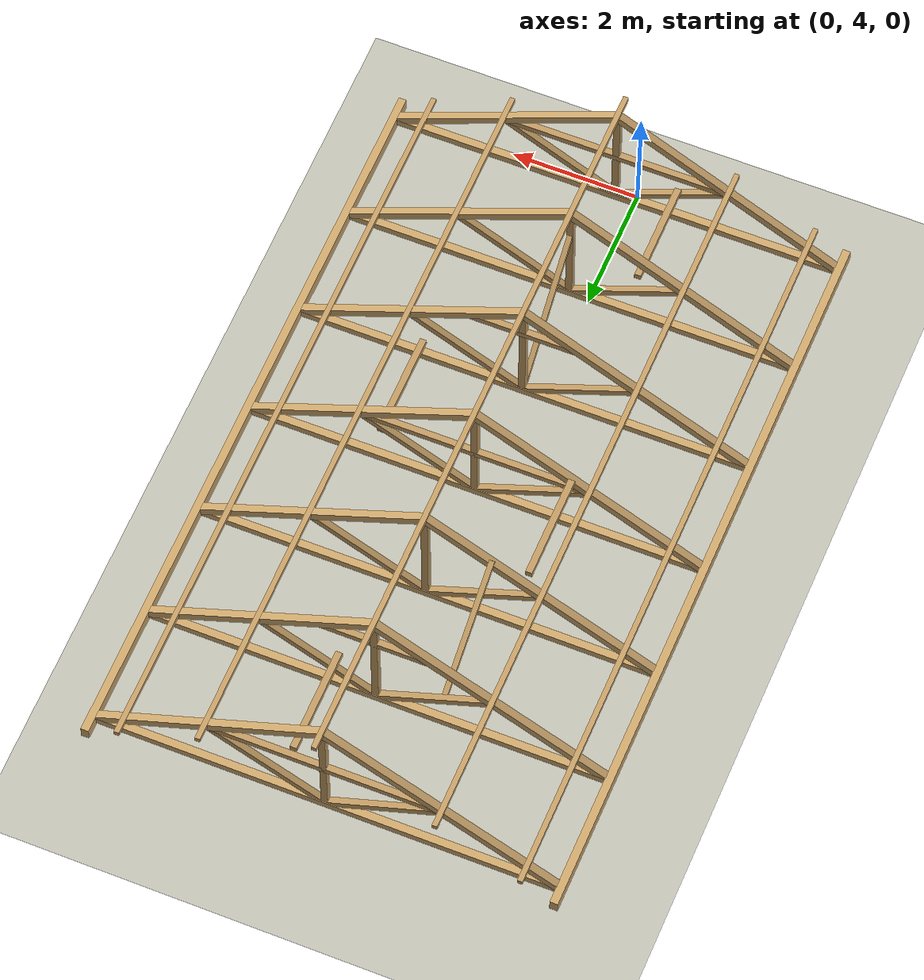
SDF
<?xml version="1.0" encoding="UTF-8"?>
<sdf version="1.9">
  <world name="truss2">
    <physics type="ode">
      <max_step_size>0.004</max_step_size>
      <real_time_factor>1.0</real_time_factor>
      <real_time_update_rate>250</real_time_update_rate>
    </physics>

    <plugin filename="gz-sim-physics-system" name="gz::sim::systems::Physics">
      <engine><filename>gz-physics-dartsim-plugin</filename></engine>
    </plugin>
    <plugin filename="gz-sim-navsat-system" name="gz::sim::systems::NavSat"/>
    <plugin filename="gz-sim-scene-broadcaster-system" name="gz::sim::systems::SceneBroadcaster"/>
    <plugin filename="gz-sim-user-commands-system" name="gz::sim::systems::UserCommands"/>
    <plugin filename="gz-sim-sensors-system" name="gz::sim::systems::Sensors">
      <render_engine>ogre2</render_engine>
    </plugin>
    <plugin filename="gz-sim-imu-system" name="gz::sim::systems::Imu"/>
    <plugin filename="gz-sim-magnetometer-system" name="gz::sim::systems::Magnetometer"/>
    <plugin filename="gz-sim-air-pressure-system" name="gz::sim::systems::AirPressure"/>

    <gravity>0 0 -9.8</gravity>
    <magnetic_field>6e-06 2.3e-05 -4.2e-05</magnetic_field>
    <atmosphere type="adiabatic"/>
    <scene>
      <grid>false</grid>
      <ambient>0.4 0.4 0.4 1</ambient>
      <background>0.45 0.65 0.95 1</background>
      <shadows>true</shadows>
    </scene>

    <!-- Ground -->
    <model name="ground_plane"><static>true</static>
      <link name="link">
        <collision name="collision">
          <geometry><plane><normal>0 0 1</normal><size>1 1</size></plane></geometry>
        </collision>
        <visual name="visual">
          <geometry><plane><normal>0 0 1</normal><size>500 500</size></plane></geometry>
          <material>
            <ambient>0.75 0.75 0.70 1</ambient>
            <diffuse>0.75 0.75 0.70 1</diffuse>
          </material>
        </visual>
      </link>
    </model>

    <!--  TRUSS 0  (y = 0)  +  collar tie at z = 2.5                -->
    <model name="t0_bchord"><static>true</static><pose>0 5.0 1.5 0 0 0</pose><link name="link">
        <collision name="c"><geometry><box><size>7.0 0.12 0.12</size></box></geometry></collision>
        <visual name="v"><geometry><box><size>7.0 0.12 0.12</size></box></geometry>
          <material><ambient>0.75 0.60 0.38 1</ambient><diffuse>0.80 0.65 0.42 1</diffuse></material></visual></link></model>
    <model name="t0_lraft"><static>true</static><pose>-1.75 5.0 2.5 0 -0.5191 0</pose><link name="link">
        <collision name="c"><geometry><box><size>4.031 0.12 0.12</size></box></geometry></collision>
        <visual name="v"><geometry><box><size>4.031 0.12 0.12</size></box></geometry>
          <material><ambient>0.75 0.60 0.38 1</ambient><diffuse>0.80 0.65 0.42 1</diffuse></material></visual></link></model>
    <model name="t0_rraft"><static>true</static><pose>1.75 5.0 2.5 0 0.5191 0</pose><link name="link">
        <collision name="c"><geometry><box><size>4.031 0.12 0.12</size></box></geometry></collision>
        <visual name="v"><geometry><box><size>4.031 0.12 0.12</size></box></geometry>
          <material><ambient>0.75 0.60 0.38 1</ambient><diffuse>0.80 0.65 0.42 1</diffuse></material></visual></link></model>
    <model name="t0_kpost"><static>true</static><pose>0 5.0 2.5 0 0 0</pose><link name="link">
        <collision name="c"><geometry><box><size>0.10 0.10 2.0</size></box></geometry></collision>
        <visual name="v"><geometry><box><size>0.10 0.10 2.0</size></box></geometry>
          <material><ambient>0.70 0.56 0.35 1</ambient><diffuse>0.75 0.60 0.38 1</diffuse></material></visual></link></model>
    <model name="t0_ldiag"><static>true</static><pose>-0.875 5.0 2.0 0 0.5191 0</pose><link name="link">
        <collision name="c"><geometry><box><size>2.016 0.10 0.10</size></box></geometry></collision>
        <visual name="v"><geometry><box><size>2.016 0.10 0.10</size></box></geometry>
          <material><ambient>0.70 0.56 0.35 1</ambient><diffuse>0.75 0.60 0.38 1</diffuse></material></visual></link></model>
    <model name="t0_rdiag"><static>true</static><pose>0.875 5.0 2.0 0 -0.5191 0</pose><link name="link">
        <collision name="c"><geometry><box><size>2.016 0.10 0.10</size></box></geometry></collision>
        <visual name="v"><geometry><box><size>2.016 0.10 0.10</size></box></geometry>
          <material><ambient>0.70 0.56 0.35 1</ambient><diffuse>0.75 0.60 0.38 1</diffuse></material></visual></link></model>
    <model name="t0_collar"><static>true</static><pose>0 5.0 2.5 0 0 0</pose><link name="link">
        <collision name="c"><geometry><box><size>3.5 0.10 0.10</size></box></geometry></collision>
        <visual name="v"><geometry><box><size>3.5 0.10 0.10</size></box></geometry>
          <material><ambient>0.70 0.56 0.35 1</ambient><diffuse>0.75 0.60 0.38 1</diffuse></material></visual></link></model>

    <!--  TRUSS 1  (y = 1.8)  — no collar tie                       -->
    <model name="t1_bchord"><static>true</static><pose>0 6.8 1.5 0 0 0</pose><link name="link">
        <collision name="c"><geometry><box><size>7.0 0.12 0.12</size></box></geometry></collision>
        <visual name="v"><geometry><box><size>7.0 0.12 0.12</size></box></geometry>
          <material><ambient>0.75 0.60 0.38 1</ambient><diffuse>0.80 0.65 0.42 1</diffuse></material></visual></link></model>
    <model name="t1_lraft"><static>true</static><pose>-1.75 6.8 2.5 0 -0.5191 0</pose><link name="link">
        <collision name="c"><geometry><box><size>4.031 0.12 0.12</size></box></geometry></collision>
        <visual name="v"><geometry><box><size>4.031 0.12 0.12</size></box></geometry>
          <material><ambient>0.75 0.60 0.38 1</ambient><diffuse>0.80 0.65 0.42 1</diffuse></material></visual></link></model>
    <model name="t1_rraft"><static>true</static><pose>1.75 6.8 2.5 0 0.5191 0</pose><link name="link">
        <collision name="c"><geometry><box><size>4.031 0.12 0.12</size></box></geometry></collision>
        <visual name="v"><geometry><box><size>4.031 0.12 0.12</size></box></geometry>
          <material><ambient>0.75 0.60 0.38 1</ambient><diffuse>0.80 0.65 0.42 1</diffuse></material></visual></link></model>
    <model name="t1_kpost"><static>true</static><pose>0 6.8 2.5 0 0 0</pose><link name="link">
        <collision name="c"><geometry><box><size>0.10 0.10 2.0</size></box></geometry></collision>
        <visual name="v"><geometry><box><size>0.10 0.10 2.0</size></box></geometry>
          <material><ambient>0.70 0.56 0.35 1</ambient><diffuse>0.75 0.60 0.38 1</diffuse></material></visual></link></model>
    <model name="t1_ldiag"><static>true</static><pose>-0.875 6.8 2.0 0 0.5191 0</pose><link name="link">
        <collision name="c"><geometry><box><size>2.016 0.10 0.10</size></box></geometry></collision>
        <visual name="v"><geometry><box><size>2.016 0.10 0.10</size></box></geometry>
          <material><ambient>0.70 0.56 0.35 1</ambient><diffuse>0.75 0.60 0.38 1</diffuse></material></visual></link></model>
    <model name="t1_rdiag"><static>true</static><pose>0.875 6.8 2.0 0 -0.5191 0</pose><link name="link">
        <collision name="c"><geometry><box><size>2.016 0.10 0.10</size></box></geometry></collision>
        <visual name="v"><geometry><box><size>2.016 0.10 0.10</size></box></geometry>
          <material><ambient>0.70 0.56 0.35 1</ambient><diffuse>0.75 0.60 0.38 1</diffuse></material></visual></link></model>

    <!--  TRUSS 2  (y = 3.6)  +  collar tie at z = 3.0              -->
    <model name="t2_bchord"><static>true</static><pose>0 8.6 1.5 0 0 0</pose><link name="link">
        <collision name="c"><geometry><box><size>7.0 0.12 0.12</size></box></geometry></collision>
        <visual name="v"><geometry><box><size>7.0 0.12 0.12</size></box></geometry>
          <material><ambient>0.75 0.60 0.38 1</ambient><diffuse>0.80 0.65 0.42 1</diffuse></material></visual></link></model>
    <model name="t2_lraft"><static>true</static><pose>-1.75 8.6 2.5 0 -0.5191 0</pose><link name="link">
        <collision name="c"><geometry><box><size>4.031 0.12 0.12</size></box></geometry></collision>
        <visual name="v"><geometry><box><size>4.031 0.12 0.12</size></box></geometry>
          <material><ambient>0.75 0.60 0.38 1</ambient><diffuse>0.80 0.65 0.42 1</diffuse></material></visual></link></model>
    <model name="t2_rraft"><static>true</static><pose>1.75 8.6 2.5 0 0.5191 0</pose><link name="link">
        <collision name="c"><geometry><box><size>4.031 0.12 0.12</size></box></geometry></collision>
        <visual name="v"><geometry><box><size>4.031 0.12 0.12</size></box></geometry>
          <material><ambient>0.75 0.60 0.38 1</ambient><diffuse>0.80 0.65 0.42 1</diffuse></material></visual></link></model>
    <model name="t2_kpost"><static>true</static><pose>0 8.6 2.5 0 0 0</pose><link name="link">
        <collision name="c"><geometry><box><size>0.10 0.10 2.0</size></box></geometry></collision>
        <visual name="v"><geometry><box><size>0.10 0.10 2.0</size></box></geometry>
          <material><ambient>0.70 0.56 0.35 1</ambient><diffuse>0.75 0.60 0.38 1</diffuse></material></visual></link></model>
    <model name="t2_ldiag"><static>true</static><pose>-0.875 8.6 2.0 0 0.5191 0</pose><link name="link">
        <collision name="c"><geometry><box><size>2.016 0.10 0.10</size></box></geometry></collision>
        <visual name="v"><geometry><box><size>2.016 0.10 0.10</size></box></geometry>
          <material><ambient>0.70 0.56 0.35 1</ambient><diffuse>0.75 0.60 0.38 1</diffuse></material></visual></link></model>
    <model name="t2_rdiag"><static>true</static><pose>0.875 8.6 2.0 0 -0.5191 0</pose><link name="link">
        <collision name="c"><geometry><box><size>2.016 0.10 0.10</size></box></geometry></collision>
        <visual name="v"><geometry><box><size>2.016 0.10 0.10</size></box></geometry>
          <material><ambient>0.70 0.56 0.35 1</ambient><diffuse>0.75 0.60 0.38 1</diffuse></material></visual></link></model>
    <model name="t2_collar"><static>true</static><pose>0 8.6 3.0 0 0 0</pose><link name="link">
        <collision name="c"><geometry><box><size>1.75 0.10 0.10</size></box></geometry></collision>
        <visual name="v"><geometry><box><size>1.75 0.10 0.10</size></box></geometry>
          <material><ambient>0.70 0.56 0.35 1</ambient><diffuse>0.75 0.60 0.38 1</diffuse></material></visual></link></model>

    <!--  TRUSS 3  (y = 5.4)  +  collar tie at z = 2.5              -->
    <model name="t3_bchord"><static>true</static><pose>0 10.4 1.5 0 0 0</pose><link name="link">
        <collision name="c"><geometry><box><size>7.0 0.12 0.12</size></box></geometry></collision>
        <visual name="v"><geometry><box><size>7.0 0.12 0.12</size></box></geometry>
          <material><ambient>0.75 0.60 0.38 1</ambient><diffuse>0.80 0.65 0.42 1</diffuse></material></visual></link></model>
    <model name="t3_lraft"><static>true</static><pose>-1.75 10.4 2.5 0 -0.5191 0</pose><link name="link">
        <collision name="c"><geometry><box><size>4.031 0.12 0.12</size></box></geometry></collision>
        <visual name="v"><geometry><box><size>4.031 0.12 0.12</size></box></geometry>
          <material><ambient>0.75 0.60 0.38 1</ambient><diffuse>0.80 0.65 0.42 1</diffuse></material></visual></link></model>
    <model name="t3_rraft"><static>true</static><pose>1.75 10.4 2.5 0 0.5191 0</pose><link name="link">
        <collision name="c"><geometry><box><size>4.031 0.12 0.12</size></box></geometry></collision>
        <visual name="v"><geometry><box><size>4.031 0.12 0.12</size></box></geometry>
          <material><ambient>0.75 0.60 0.38 1</ambient><diffuse>0.80 0.65 0.42 1</diffuse></material></visual></link></model>
    <model name="t3_kpost"><static>true</static><pose>0 10.4 2.5 0 0 0</pose><link name="link">
        <collision name="c"><geometry><box><size>0.10 0.10 2.0</size></box></geometry></collision>
        <visual name="v"><geometry><box><size>0.10 0.10 2.0</size></box></geometry>
          <material><ambient>0.70 0.56 0.35 1</ambient><diffuse>0.75 0.60 0.38 1</diffuse></material></visual></link></model>
    <model name="t3_ldiag"><static>true</static><pose>-0.875 10.4 2.0 0 0.5191 0</pose><link name="link">
        <collision name="c"><geometry><box><size>2.016 0.10 0.10</size></box></geometry></collision>
        <visual name="v"><geometry><box><size>2.016 0.10 0.10</size></box></geometry>
          <material><ambient>0.70 0.56 0.35 1</ambient><diffuse>0.75 0.60 0.38 1</diffuse></material></visual></link></model>
    <model name="t3_rdiag"><static>true</static><pose>0.875 10.4 2.0 0 -0.5191 0</pose><link name="link">
        <collision name="c"><geometry><box><size>2.016 0.10 0.10</size></box></geometry></collision>
        <visual name="v"><geometry><box><size>2.016 0.10 0.10</size></box></geometry>
          <material><ambient>0.70 0.56 0.35 1</ambient><diffuse>0.75 0.60 0.38 1</diffuse></material></visual></link></model>
    <model name="t3_collar"><static>true</static><pose>0 10.4 2.5 0 0 0</pose><link name="link">
        <collision name="c"><geometry><box><size>3.5 0.10 0.10</size></box></geometry></collision>
        <visual name="v"><geometry><box><size>3.5 0.10 0.10</size></box></geometry>
          <material><ambient>0.70 0.56 0.35 1</ambient><diffuse>0.75 0.60 0.38 1</diffuse></material></visual></link></model>

    <!--  TRUSS 4  (y = 7.2)  — no collar tie                       -->
    <model name="t4_bchord"><static>true</static><pose>0 12.2 1.5 0 0 0</pose><link name="link">
        <collision name="c"><geometry><box><size>7.0 0.12 0.12</size></box></geometry></collision>
        <visual name="v"><geometry><box><size>7.0 0.12 0.12</size></box></geometry>
          <material><ambient>0.75 0.60 0.38 1</ambient><diffuse>0.80 0.65 0.42 1</diffuse></material></visual></link></model>
    <model name="t4_lraft"><static>true</static><pose>-1.75 12.2 2.5 0 -0.5191 0</pose><link name="link">
        <collision name="c"><geometry><box><size>4.031 0.12 0.12</size></box></geometry></collision>
        <visual name="v"><geometry><box><size>4.031 0.12 0.12</size></box></geometry>
          <material><ambient>0.75 0.60 0.38 1</ambient><diffuse>0.80 0.65 0.42 1</diffuse></material></visual></link></model>
    <model name="t4_rraft"><static>true</static><pose>1.75 12.2 2.5 0 0.5191 0</pose><link name="link">
        <collision name="c"><geometry><box><size>4.031 0.12 0.12</size></box></geometry></collision>
        <visual name="v"><geometry><box><size>4.031 0.12 0.12</size></box></geometry>
          <material><ambient>0.75 0.60 0.38 1</ambient><diffuse>0.80 0.65 0.42 1</diffuse></material></visual></link></model>
    <model name="t4_kpost"><static>true</static><pose>0 12.2 2.5 0 0 0</pose><link name="link">
        <collision name="c"><geometry><box><size>0.10 0.10 2.0</size></box></geometry></collision>
        <visual name="v"><geometry><box><size>0.10 0.10 2.0</size></box></geometry>
          <material><ambient>0.70 0.56 0.35 1</ambient><diffuse>0.75 0.60 0.38 1</diffuse></material></visual></link></model>
    <model name="t4_ldiag"><static>true</static><pose>-0.875 12.2 2.0 0 0.5191 0</pose><link name="link">
        <collision name="c"><geometry><box><size>2.016 0.10 0.10</size></box></geometry></collision>
        <visual name="v"><geometry><box><size>2.016 0.10 0.10</size></box></geometry>
          <material><ambient>0.70 0.56 0.35 1</ambient><diffuse>0.75 0.60 0.38 1</diffuse></material></visual></link></model>
    <model name="t4_rdiag"><static>true</static><pose>0.875 12.2 2.0 0 -0.5191 0</pose><link name="link">
        <collision name="c"><geometry><box><size>2.016 0.10 0.10</size></box></geometry></collision>
        <visual name="v"><geometry><box><size>2.016 0.10 0.10</size></box></geometry>
          <material><ambient>0.70 0.56 0.35 1</ambient><diffuse>0.75 0.60 0.38 1</diffuse></material></visual></link></model>

    <!--  TRUSS 5  (y = 9.0)  +  collar tie at z = 3.0              -->
    <model name="t5_bchord"><static>true</static><pose>0 14.0 1.5 0 0 0</pose><link name="link">
        <collision name="c"><geometry><box><size>7.0 0.12 0.12</size></box></geometry></collision>
        <visual name="v"><geometry><box><size>7.0 0.12 0.12</size></box></geometry>
          <material><ambient>0.75 0.60 0.38 1</ambient><diffuse>0.80 0.65 0.42 1</diffuse></material></visual></link></model>
    <model name="t5_lraft"><static>true</static><pose>-1.75 14.0 2.5 0 -0.5191 0</pose><link name="link">
        <collision name="c"><geometry><box><size>4.031 0.12 0.12</size></box></geometry></collision>
        <visual name="v"><geometry><box><size>4.031 0.12 0.12</size></box></geometry>
          <material><ambient>0.75 0.60 0.38 1</ambient><diffuse>0.80 0.65 0.42 1</diffuse></material></visual></link></model>
    <model name="t5_rraft"><static>true</static><pose>1.75 14.0 2.5 0 0.5191 0</pose><link name="link">
        <collision name="c"><geometry><box><size>4.031 0.12 0.12</size></box></geometry></collision>
        <visual name="v"><geometry><box><size>4.031 0.12 0.12</size></box></geometry>
          <material><ambient>0.75 0.60 0.38 1</ambient><diffuse>0.80 0.65 0.42 1</diffuse></material></visual></link></model>
    <model name="t5_kpost"><static>true</static><pose>0 14.0 2.5 0 0 0</pose><link name="link">
        <collision name="c"><geometry><box><size>0.10 0.10 2.0</size></box></geometry></collision>
        <visual name="v"><geometry><box><size>0.10 0.10 2.0</size></box></geometry>
          <material><ambient>0.70 0.56 0.35 1</ambient><diffuse>0.75 0.60 0.38 1</diffuse></material></visual></link></model>
    <model name="t5_ldiag"><static>true</static><pose>-0.875 14.0 2.0 0 0.5191 0</pose><link name="link">
        <collision name="c"><geometry><box><size>2.016 0.10 0.10</size></box></geometry></collision>
        <visual name="v"><geometry><box><size>2.016 0.10 0.10</size></box></geometry>
          <material><ambient>0.70 0.56 0.35 1</ambient><diffuse>0.75 0.60 0.38 1</diffuse></material></visual></link></model>
    <model name="t5_rdiag"><static>true</static><pose>0.875 14.0 2.0 0 -0.5191 0</pose><link name="link">
        <collision name="c"><geometry><box><size>2.016 0.10 0.10</size></box></geometry></collision>
        <visual name="v"><geometry><box><size>2.016 0.10 0.10</size></box></geometry>
          <material><ambient>0.70 0.56 0.35 1</ambient><diffuse>0.75 0.60 0.38 1</diffuse></material></visual></link></model>
    <model name="t5_collar"><static>true</static><pose>0 14.0 3.0 0 0 0</pose><link name="link">
        <collision name="c"><geometry><box><size>1.75 0.10 0.10</size></box></geometry></collision>
        <visual name="v"><geometry><box><size>1.75 0.10 0.10</size></box></geometry>
          <material><ambient>0.70 0.56 0.35 1</ambient><diffuse>0.75 0.60 0.38 1</diffuse></material></visual></link></model>

    <!--  TRUSS 6  (y = 10.8)  +  collar tie at z = 2.5             -->
    <model name="t6_bchord"><static>true</static><pose>0 15.8 1.5 0 0 0</pose><link name="link">
        <collision name="c"><geometry><box><size>7.0 0.12 0.12</size></box></geometry></collision>
        <visual name="v"><geometry><box><size>7.0 0.12 0.12</size></box></geometry>
          <material><ambient>0.75 0.60 0.38 1</ambient><diffuse>0.80 0.65 0.42 1</diffuse></material></visual></link></model>
    <model name="t6_lraft"><static>true</static><pose>-1.75 15.8 2.5 0 -0.5191 0</pose><link name="link">
        <collision name="c"><geometry><box><size>4.031 0.12 0.12</size></box></geometry></collision>
        <visual name="v"><geometry><box><size>4.031 0.12 0.12</size></box></geometry>
          <material><ambient>0.75 0.60 0.38 1</ambient><diffuse>0.80 0.65 0.42 1</diffuse></material></visual></link></model>
    <model name="t6_rraft"><static>true</static><pose>1.75 15.8 2.5 0 0.5191 0</pose><link name="link">
        <collision name="c"><geometry><box><size>4.031 0.12 0.12</size></box></geometry></collision>
        <visual name="v"><geometry><box><size>4.031 0.12 0.12</size></box></geometry>
          <material><ambient>0.75 0.60 0.38 1</ambient><diffuse>0.80 0.65 0.42 1</diffuse></material></visual></link></model>
    <model name="t6_kpost"><static>true</static><pose>0 15.8 2.5 0 0 0</pose><link name="link">
        <collision name="c"><geometry><box><size>0.10 0.10 2.0</size></box></geometry></collision>
        <visual name="v"><geometry><box><size>0.10 0.10 2.0</size></box></geometry>
          <material><ambient>0.70 0.56 0.35 1</ambient><diffuse>0.75 0.60 0.38 1</diffuse></material></visual></link></model>
    <model name="t6_ldiag"><static>true</static><pose>-0.875 15.8 2.0 0 0.5191 0</pose><link name="link">
        <collision name="c"><geometry><box><size>2.016 0.10 0.10</size></box></geometry></collision>
        <visual name="v"><geometry><box><size>2.016 0.10 0.10</size></box></geometry>
          <material><ambient>0.70 0.56 0.35 1</ambient><diffuse>0.75 0.60 0.38 1</diffuse></material></visual></link></model>
    <model name="t6_rdiag"><static>true</static><pose>0.875 15.8 2.0 0 -0.5191 0</pose><link name="link">
        <collision name="c"><geometry><box><size>2.016 0.10 0.10</size></box></geometry></collision>
        <visual name="v"><geometry><box><size>2.016 0.10 0.10</size></box></geometry>
          <material><ambient>0.70 0.56 0.35 1</ambient><diffuse>0.75 0.60 0.38 1</diffuse></material></visual></link></model>
    <model name="t6_collar"><static>true</static><pose>0 15.8 2.5 0 0 0</pose><link name="link">
        <collision name="c"><geometry><box><size>3.5 0.10 0.10</size></box></geometry></collision>
        <visual name="v"><geometry><box><size>3.5 0.10 0.10</size></box></geometry>
          <material><ambient>0.70 0.56 0.35 1</ambient><diffuse>0.75 0.60 0.38 1</diffuse></material></visual></link></model>

    <!--  PURLINS  (along Y connecting all trusses)                  -->
    <!--  Sit on top of rafters, running full structure length        -->
    <!-- Ridge purlin -->
    <model name="p_ridge"><static>true</static><pose>0 10.4 3.56 0 0 0</pose><link name="link">
        <collision name="c"><geometry><box><size>0.08 11.4 0.08</size></box></geometry></collision>
        <visual name="v"><geometry><box><size>0.08 11.4 0.08</size></box></geometry>
          <material><ambient>0.72 0.58 0.37 1</ambient><diffuse>0.77 0.62 0.40 1</diffuse></material></visual></link></model>
    <!-- Left mid-rafter purlin at x=-1.75, z=2.56 -->
    <model name="p_lmid"><static>true</static><pose>-1.75 10.4 2.56 0 0 0</pose><link name="link">
        <collision name="c"><geometry><box><size>0.08 11.4 0.08</size></box></geometry></collision>
        <visual name="v"><geometry><box><size>0.08 11.4 0.08</size></box></geometry>
          <material><ambient>0.72 0.58 0.37 1</ambient><diffuse>0.77 0.62 0.40 1</diffuse></material></visual></link></model>
    <!-- Right mid-rafter purlin at x=1.75, z=2.56 -->
    <model name="p_rmid"><static>true</static><pose>1.75 10.4 2.56 0 0 0</pose><link name="link">
        <collision name="c"><geometry><box><size>0.08 11.4 0.08</size></box></geometry></collision>
        <visual name="v"><geometry><box><size>0.08 11.4 0.08</size></box></geometry>
          <material><ambient>0.72 0.58 0.37 1</ambient><diffuse>0.77 0.62 0.40 1</diffuse></material></visual></link></model>
    <!-- Left eave purlin at x=-3.0, z=1.79 -->
    <model name="p_leave"><static>true</static><pose>-3.0 10.4 1.85 0 0 0</pose><link name="link">
        <collision name="c"><geometry><box><size>0.08 11.4 0.08</size></box></geometry></collision>
        <visual name="v"><geometry><box><size>0.08 11.4 0.08</size></box></geometry>
          <material><ambient>0.72 0.58 0.37 1</ambient><diffuse>0.77 0.62 0.40 1</diffuse></material></visual></link></model>
    <!-- Right eave purlin at x=3.0, z=1.85 -->
    <model name="p_reave"><static>true</static><pose>3.0 10.4 1.85 0 0 0</pose><link name="link">
        <collision name="c"><geometry><box><size>0.08 11.4 0.08</size></box></geometry></collision>
        <visual name="v"><geometry><box><size>0.08 11.4 0.08</size></box></geometry>
          <material><ambient>0.72 0.58 0.37 1</ambient><diffuse>0.77 0.62 0.40 1</diffuse></material></visual></link></model>

    <!--  HORIZONTAL NOGGINS  (blocking between trusses)             -->
    <!--  Short beams running between adjacent trusses               -->
    <!-- Between truss 0-1 at x=-1.0, z=2.3 -->
    <model name="nog_01"><static>true</static><pose>-1.0 5.9 2.3 0 0 0</pose><link name="link">
        <collision name="c"><geometry><box><size>0.10 1.6 0.10</size></box></geometry></collision>
        <visual name="v"><geometry><box><size>0.10 1.6 0.10</size></box></geometry>
          <material><ambient>0.70 0.56 0.35 1</ambient><diffuse>0.75 0.60 0.38 1</diffuse></material></visual></link></model>
    <!-- Between truss 2-3 at x=1.5, z=2.0 -->
    <model name="nog_23"><static>true</static><pose>1.5 9.5 2.0 0 0 0</pose><link name="link">
        <collision name="c"><geometry><box><size>0.10 1.6 0.10</size></box></geometry></collision>
        <visual name="v"><geometry><box><size>0.10 1.6 0.10</size></box></geometry>
          <material><ambient>0.70 0.56 0.35 1</ambient><diffuse>0.75 0.60 0.38 1</diffuse></material></visual></link></model>
    <!-- Between truss 3-4 at x=-1.5, z=2.8 -->
    <model name="nog_34"><static>true</static><pose>-1.5 11.3 2.8 0 0 0</pose><link name="link">
        <collision name="c"><geometry><box><size>0.10 1.6 0.10</size></box></geometry></collision>
        <visual name="v"><geometry><box><size>0.10 1.6 0.10</size></box></geometry>
          <material><ambient>0.70 0.56 0.35 1</ambient><diffuse>0.75 0.60 0.38 1</diffuse></material></visual></link></model>
    <!-- Between truss 5-6 at x=0.5, z=2.5 -->
    <model name="nog_56"><static>true</static><pose>0.5 14.9 2.5 0 0 0</pose><link name="link">
        <collision name="c"><geometry><box><size>0.10 1.6 0.10</size></box></geometry></collision>
        <visual name="v"><geometry><box><size>0.10 1.6 0.10</size></box></geometry>
          <material><ambient>0.70 0.56 0.35 1</ambient><diffuse>0.75 0.60 0.38 1</diffuse></material></visual></link></model>

    <!--  DIAGONAL CROSS-BRACES  (between trusses in YZ plane)      -->
    <!--  Provide lateral bracing and extra obstacle density         -->
    <!-- Between t1-t2 at x=0: from (0,1.8,1.5) to (0,3.6,3.0) -->
    <!-- dy=1.8 dz=1.5 len=2.343 roll=atan2(1.8,1.5)=0.876 -->
    <model name="xb_12"><static>true</static><pose>0 7.7 2.25 0.876 0 0</pose><link name="link">
        <collision name="c"><geometry><box><size>0.08 0.08 2.343</size></box></geometry></collision>
        <visual name="v"><geometry><box><size>0.08 0.08 2.343</size></box></geometry>
          <material><ambient>0.70 0.56 0.35 1</ambient><diffuse>0.75 0.60 0.38 1</diffuse></material></visual></link></model>
    <!-- Between t4-t5 at x=-1: from (-1,7.2,2.0) to (-1,9.0,3.0) -->
    <!-- dy=1.8 dz=1.0 len=2.059 roll=atan2(1.8,1.0)=1.064 -->
    <model name="xb_45"><static>true</static><pose>-1 13.1 2.5 1.064 0 0</pose><link name="link">
        <collision name="c"><geometry><box><size>0.08 0.08 2.059</size></box></geometry></collision>
        <visual name="v"><geometry><box><size>0.08 0.08 2.059</size></box></geometry>
          <material><ambient>0.70 0.56 0.35 1</ambient><diffuse>0.75 0.60 0.38 1</diffuse></material></visual></link></model>

    <!--  EAVE BOARDS  (fascia at rafter ends)                       -->
    <model name="eave_l"><static>true</static><pose>-3.5 10.4 1.5 0 0 0</pose><link name="link">
        <collision name="c"><geometry><box><size>0.12 11.4 0.20</size></box></geometry></collision>
        <visual name="v"><geometry><box><size>0.12 11.4 0.20</size></box></geometry>
          <material><ambient>0.75 0.60 0.38 1</ambient><diffuse>0.80 0.65 0.42 1</diffuse></material></visual></link></model>
    <model name="eave_r"><static>true</static><pose>3.5 10.4 1.5 0 0 0</pose><link name="link">
        <collision name="c"><geometry><box><size>0.12 11.4 0.20</size></box></geometry></collision>
        <visual name="v"><geometry><box><size>0.12 11.4 0.20</size></box></geometry>
          <material><ambient>0.75 0.60 0.38 1</ambient><diffuse>0.80 0.65 0.42 1</diffuse></material></visual></link></model>

    <!--  LIGHTING & COORDINATES                                     -->
    <light name="sunUTC" type="directional">
      <pose>0 0 500 0 0 0</pose>
      <cast_shadows>true</cast_shadows>
      <intensity>1</intensity>
      <direction>0.001 0.625 -0.78</direction>
      <diffuse>0.904 0.904 0.904 1</diffuse>
      <specular>0.271 0.271 0.271 1</specular>
      <attenuation>
        <range>2000</range><linear>0</linear>
        <constant>1</constant><quadratic>0</quadratic>
      </attenuation>
    </light>

    <spherical_coordinates>
      <surface_model>EARTH_WGS84</surface_model>
      <world_frame_orientation>ENU</world_frame_orientation>
      <latitude_deg>47.397971057728974</latitude_deg>
      <longitude_deg>8.546163739800146</longitude_deg>
      <elevation>0</elevation>
    </spherical_coordinates>
  </world>
</sdf>
